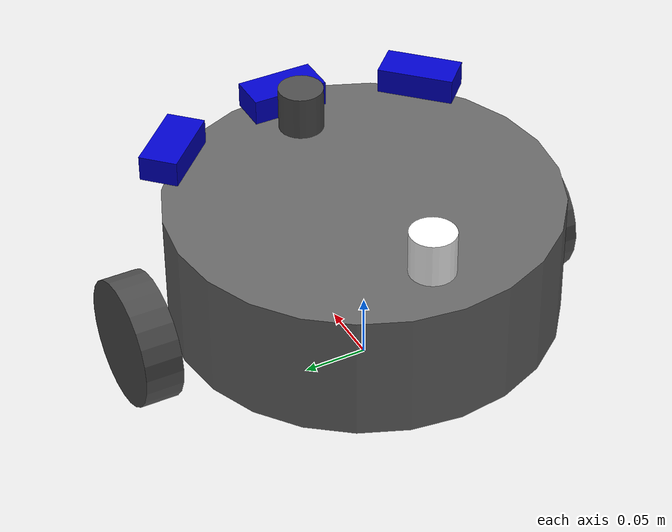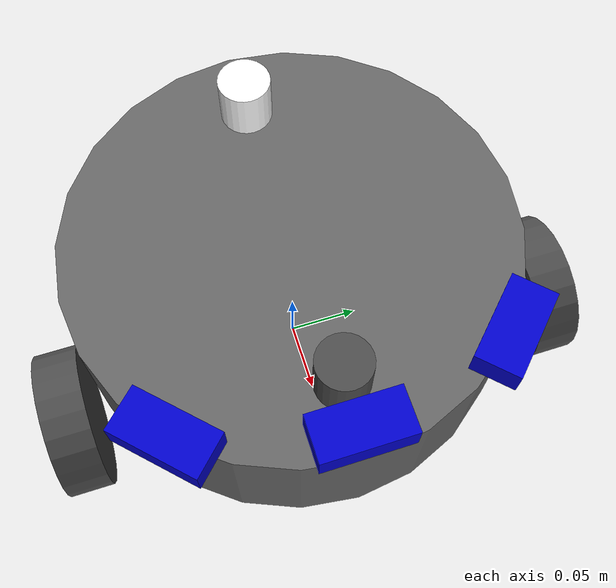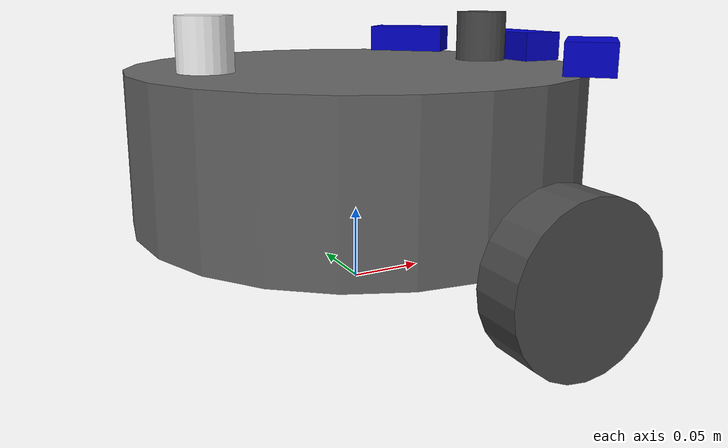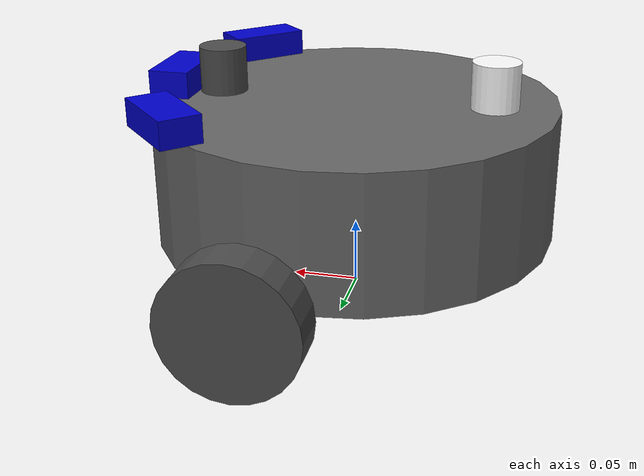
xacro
<?xml version="1.0" ?>
<robot xmlns:xacro="http://ros.org/wiki/xacro" name="clean_robot">

  <!-- Init colour -->
  <material name="black">
      <color rgba="0.0 0.0 0.0 1.0"/>
  </material>

  <material name="dark">
    <color rgba="0.3 0.3 0.3 1.0"/>
  </material>

  <material name="light_black">
    <color rgba="0.4 0.4 0.4 1.0"/>
  </material>

  <material name="blue">
    <color rgba="0.0 0.0 0.8 1.0"/>
  </material>

  <material name="green">
    <color rgba="0.0 0.8 0.0 1.0"/>
  </material>

  <material name="grey">
    <color rgba="0.5 0.5 0.5 1.0"/>
  </material>

  <material name="orange">
    <color rgba="1.0 0.4235 0.0392 1.0"/>
  </material>

  <material name="brown">
    <color rgba="0.8706 0.8118 0.7647 1.0"/>
  </material>

  <material name="red">
    <color rgba="0.8 0.0 0.0 1.0"/>
  </material>

  <material name="white">
    <color rgba="1.0 1.0 1.0 1.0"/>
  </material>

  <!-- link -->
  <link name="base_footprint"/>

  <link name="base_link">
    <visual>
      <origin xyz="0 0 0" rpy="0 0 0"/>
      <geometry>
        <cylinder length="0.1" radius="0.15" />
      </geometry>
      <material name="light_black"/>
    </visual>

    <collision>
      <origin xyz="0 0 0" rpy="0 0 0"/>
      <geometry>
        <cylinder length="0.1" radius="0.15" />
      </geometry>
    </collision>
  </link>

  <link name="wheel_left_link">
    <visual>
      <origin xyz="0 0 0" rpy="0 0 0"/>
      <geometry>
        <cylinder length="0.03" radius="0.05" />
      </geometry>
      <material name="dark"/>
    </visual>

    <collision>
      <origin xyz="0 0 0" rpy="0 0 0"/>
      <geometry>
        <cylinder length="0.03" radius="0.05" />
      </geometry>
    </collision>
  </link>

  <link name="wheel_right_link">
    <visual>
      <origin xyz="0 0 0" rpy="0 0 0"/>
      <geometry>
        <cylinder length="0.03" radius="0.05" />
      </geometry>
      <material name="dark"/>
    </visual>

    <collision>
      <origin xyz="0 0 0" rpy="0 0 0"/>
      <geometry>
        <cylinder length="0.03" radius="0.05" />
      </geometry>
    </collision>
  </link>

  <link name="caster_back_link">
    <collision>
      <origin xyz="0 0 0" rpy="0 0 0"/>
      <geometry>
        <box size="0.03 0.42 0.02"/>
      </geometry>
    </collision>
  </link>

  <link name="imu_link"/>

  <link name="base_scan_front">
    <visual>
      <origin xyz="0 0 0" rpy="0 0 0"/>
      <geometry>
        <cylinder length="0.0344" radius="0.0176" />
      </geometry>
      <material name="dark"/>
    </visual>

    <collision>
      <origin xyz="0 0 0" rpy="0 0 0"/>
      <geometry>
        <cylinder length="0.0344" radius="0.0176" />
      </geometry>
    </collision>
  </link>

  <link name="base_scan_back">
    <visual>
      <origin xyz="0 0 0" rpy="0 0 0"/>
      <geometry>
        <cylinder length="0.0344" radius="0.0176" />
      </geometry>
      <material name="white"/>
    </visual>

    <collision>
        <origin xyz="0 0 0" rpy="0 0 0"/>
      <geometry>
        <cylinder length="0.0344" radius="0.0176" />
      </geometry>
    </collision>
  </link>

  <link name="ultrasonic_front">
    <visual>
        <origin xyz="0 0 0" rpy="0 0 0"/>
        <geometry>
          <box size="0.03 0.06 0.02" />
        </geometry>
        <material name="blue"/>
      </visual>
  </link>

  <link name="ultrasonic_left">
    <visual>
        <origin xyz="0 0 0" rpy="0 0 0"/>
        <geometry>
          <box size="0.03 0.06 0.02" />
        </geometry>
        <material name="blue"/>
      </visual>
  </link>

  <link name="ultrasonic_right">
    <visual>
        <origin xyz="0 0 0" rpy="0 0 0"/>
        <geometry>
          <box size="0.03 0.06 0.02" />
        </geometry>
        <material name="blue"/>
      </visual>
  </link>

<!-- camera link -->

<!-- joint -->
  <joint name="base_joint" type="fixed">
    <parent link="base_footprint"/>
    <child link="base_link" />
    <origin xyz="0 0 0.1" rpy="0 0 0"/>
  </joint>

  <joint name="wheel_left_joint" type="continuous">
    <parent link="base_link"/>
    <child link="wheel_left_link"/>
    <origin xyz="0.04 0.17 -0.05" rpy="-1.57 0 0"/>
    <axis xyz="0 0 1"/>
  </joint>

  <joint name="wheel_right_joint" type="continuous">
    <parent link="base_link"/>
    <child link="wheel_right_link"/>
    <origin xyz="0.04 -0.17 -0.05" rpy="-1.57 0 0"/>
    <axis xyz="0 0 1"/>
  </joint>

  <joint name="caster_back_joint" type="fixed">
    <parent link="base_link"/>
    <child link="caster_back_link"/>
    <origin xyz="-0.135 0 -0.075" rpy="-1.57 0 0"/>
  </joint>

  <joint name="imu_joint" type="fixed">
    <parent link="base_link"/>
    <child link="imu_link"/>
    <origin xyz="0 0 0.05" rpy="0 0 0"/>
  </joint>

  <joint name="scan_front_joint" type="fixed">
    <parent link="base_link"/>
    <child link="base_scan_front"/>
    <origin xyz="0.1024 0 0.06722" rpy="0 0 0"/>
  </joint>

  <joint name="scan_back_joint" type="fixed">
    <parent link="base_link"/>
    <child link="base_scan_back"/>
    <origin xyz="-0.1024 0 0.06722" rpy="0 0 3.14"/>
  </joint>

  <joint name="ultrasonic_front_joint" type="fixed">
    <parent link="base_link"/>
    <child link="ultrasonic_front"/>
    <origin xyz="0.135 0 0.06" rpy="0 0 0"/>
  </joint>

  <joint name="ultrasonic_left_joint" type="fixed">
    <parent link="base_link"/>
    <child link="ultrasonic_left"/>
    <origin xyz="0.10606 0.10606 0.06" rpy="0 0 0.785"/>
  </joint>

  <joint name="ultrasonic_right_joint" type="fixed">
    <parent link="base_link"/>
    <child link="ultrasonic_right"/>
    <origin xyz="0.10606 -0.10606 0.06" rpy="0 0 -0.785"/>
  </joint>

  <!-- camera joint-->

</robot>
